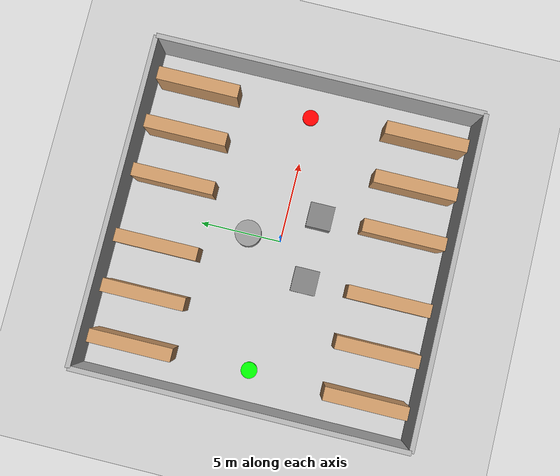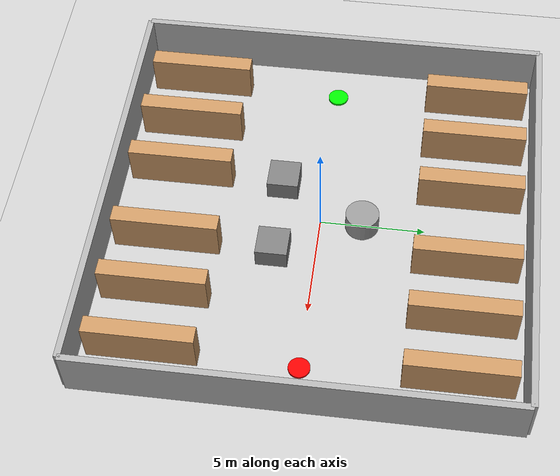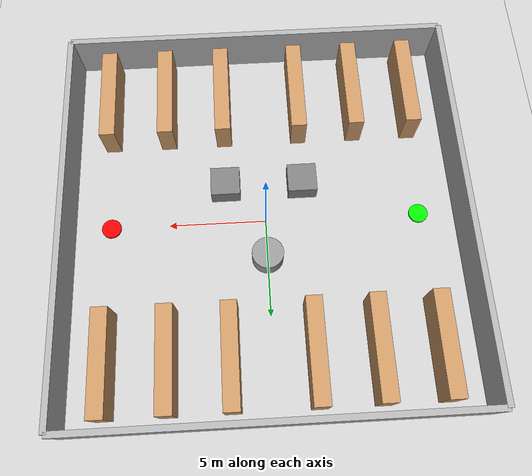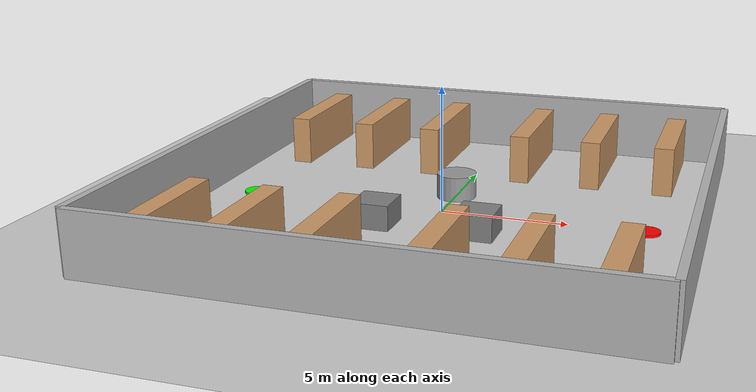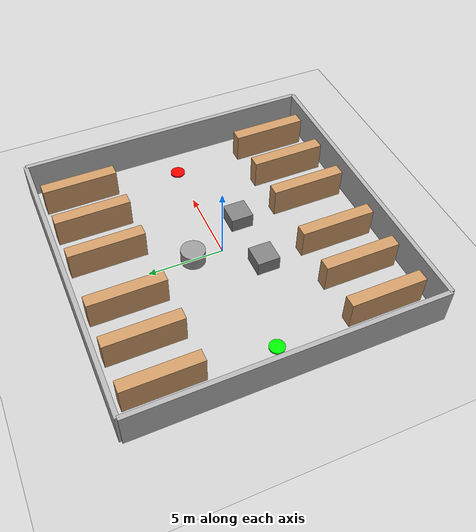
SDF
<?xml version="1.0"?>
<sdf version='1.6'>
  <world name='test_world'>
    <!-- Lighting -->
    <light name='sun' type='directional'>
      <cast_shadows>1</cast_shadows>
      <pose>0 0 15 0 0 0</pose>
      <diffuse>0.9 0.9 0.9 1</diffuse>
      <specular>0.2 0.2 0.2 1</specular>
      <attenuation>
        <range>1000</range>
        <constant>0.9</constant>
        <linear>0.01</linear>
        <quadratic>0.001</quadratic>
      </attenuation>
      <direction>0.5 0.5 -1</direction>
    </light>

    <!-- Ground Plane -->
    <model name='ground_plane'>
      <static>1</static>
      <link name='link'>
        <collision name='collision'>
          <geometry>
            <plane>
              <normal>0 0 1</normal>
              <size>25 25</size>
            </plane>
          </geometry>
          <surface>
            <friction>
              <ode>
                <mu>100</mu>
                <mu2>50</mu2>
              </ode>
            </friction>
          </surface>
        </collision>
        <visual name='visual'>
          <cast_shadows>0</cast_shadows>
          <geometry>
            <plane>
              <normal>0 0 1</normal>
              <size>25 25</size>
            </plane>
          </geometry>
          <material>
            <script>
              <uri>file://media/materials/scripts/gazebo.material</uri>
              <name>Gazebo/Grey</name>
            </script>
          </material>
        </visual>
      </link>
    </model>

    <!-- Outer Walls (20m x 20m warehouse) -->
    <model name='outer_walls'>
      <static>1</static>
      <link name='north_wall'>
        <pose>0 10 1.25 0 0 0</pose>
        <collision name='collision'>
          <geometry>
            <box>
              <size>20 0.3 2.5</size>
            </box>
          </geometry>
        </collision>
        <visual name='visual'>
          <geometry>
            <box>
              <size>20 0.3 2.5</size>
            </box>
          </geometry>
          <material>
            <ambient>0.7 0.7 0.7 1</ambient>
            <diffuse>0.7 0.7 0.7 1</diffuse>
          </material>
        </visual>
      </link>
      <link name='south_wall'>
        <pose>0 -10 1.25 0 0 0</pose>
        <collision name='collision'>
          <geometry>
            <box>
              <size>20 0.3 2.5</size>
            </box>
          </geometry>
        </collision>
        <visual name='visual'>
          <geometry>
            <box>
              <size>20 0.3 2.5</size>
            </box>
          </geometry>
          <material>
            <ambient>0.7 0.7 0.7 1</ambient>
            <diffuse>0.7 0.7 0.7 1</diffuse>
          </material>
        </visual>
      </link>
      <link name='east_wall'>
        <pose>10 0 1.25 0 0 0</pose>
        <collision name='collision'>
          <geometry>
            <box>
              <size>0.3 20 2.5</size>
            </box>
          </geometry>
        </collision>
        <visual name='visual'>
          <geometry>
            <box>
              <size>0.3 20 2.5</size>
            </box>
          </geometry>
          <material>
            <ambient>0.7 0.7 0.7 1</ambient>
            <diffuse>0.7 0.7 0.7 1</diffuse>
          </material>
        </visual>
      </link>
      <link name='west_wall'>
        <pose>-10 0 1.25 0 0 0</pose>
        <collision name='collision'>
          <geometry>
            <box>
              <size>0.3 20 2.5</size>
            </box>
          </geometry>
        </collision>
        <visual name='visual'>
          <geometry>
            <box>
              <size>0.3 20 2.5</size>
            </box>
          </geometry>
          <material>
            <ambient>0.7 0.7 0.7 1</ambient>
            <diffuse>0.7 0.7 0.7 1</diffuse>
          </material>
        </visual>
      </link>
    </model>

    <!-- Shelving Units - Row 1 (North Side, Left) - 垂直排列，大尺寸 -->
    <model name='shelf_1_1'>
      <static>1</static>
      <pose>-8 7 1.0 0 0 0</pose>
      <link name='link'>
        <collision name='collision'>
          <geometry>
            <box>
              <size>0.8 5 2.0</size>
            </box>
          </geometry>
        </collision>
        <visual name='visual'>
          <geometry>
            <box>
              <size>0.8 5 2.0</size>
            </box>
          </geometry>
          <material>
            <ambient>0.8 0.6 0.4 1</ambient>
            <diffuse>0.8 0.6 0.4 1</diffuse>
          </material>
        </visual>
      </link>
    </model>

    <model name='shelf_1_2'>
      <static>1</static>
      <pose>-5 7 1.0 0 0 0</pose>
      <link name='link'>
        <collision name='collision'>
          <geometry>
            <box>
              <size>0.8 5 2.0</size>
            </box>
          </geometry>
        </collision>
        <visual name='visual'>
          <geometry>
            <box>
              <size>0.8 5 2.0</size>
            </box>
          </geometry>
          <material>
            <ambient>0.8 0.6 0.4 1</ambient>
            <diffuse>0.8 0.6 0.4 1</diffuse>
          </material>
        </visual>
      </link>
    </model>

    <model name='shelf_1_3'>
      <static>1</static>
      <pose>-2 7 1.0 0 0 0</pose>
      <link name='link'>
        <collision name='collision'>
          <geometry>
            <box>
              <size>0.8 5 2.0</size>
            </box>
          </geometry>
        </collision>
        <visual name='visual'>
          <geometry>
            <box>
              <size>0.8 5 2.0</size>
            </box>
          </geometry>
          <material>
            <ambient>0.8 0.6 0.4 1</ambient>
            <diffuse>0.8 0.6 0.4 1</diffuse>
          </material>
        </visual>
      </link>
    </model>

    <!-- Row 2 (South Side, Left) - 垂直排列，大尺寸 -->
    <model name='shelf_2_1'>
      <static>1</static>
      <pose>-8 -7 1.0 0 0 0</pose>
      <link name='link'>
        <collision name='collision'>
          <geometry>
            <box>
              <size>0.8 5 2.0</size>
            </box>
          </geometry>
        </collision>
        <visual name='visual'>
          <geometry>
            <box>
              <size>0.8 5 2.0</size>
            </box>
          </geometry>
          <material>
            <ambient>0.8 0.6 0.4 1</ambient>
            <diffuse>0.8 0.6 0.4 1</diffuse>
          </material>
        </visual>
      </link>
    </model>

    <model name='shelf_2_2'>
      <static>1</static>
      <pose>-5 -7 1.0 0 0 0</pose>
      <link name='link'>
        <collision name='collision'>
          <geometry>
            <box>
              <size>0.8 5 2.0</size>
            </box>
          </geometry>
        </collision>
        <visual name='visual'>
          <geometry>
            <box>
              <size>0.8 5 2.0</size>
            </box>
          </geometry>
          <material>
            <ambient>0.8 0.6 0.4 1</ambient>
            <diffuse>0.8 0.6 0.4 1</diffuse>
          </material>
        </visual>
      </link>
    </model>

    <model name='shelf_2_3'>
      <static>1</static>
      <pose>-2 -7 1.0 0 0 0</pose>
      <link name='link'>
        <collision name='collision'>
          <geometry>
            <box>
              <size>0.8 5 2.0</size>
            </box>
          </geometry>
        </collision>
        <visual name='visual'>
          <geometry>
            <box>
              <size>0.8 5 2.0</size>
            </box>
          </geometry>
          <material>
            <ambient>0.8 0.6 0.4 1</ambient>
            <diffuse>0.8 0.6 0.4 1</diffuse>
          </material>
        </visual>
      </link>
    </model>

    <!-- Row 3 (East Side) - 垂直排列，大尺寸 -->
    <model name='shelf_3_1'>
      <static>1</static>
      <pose>8 7 1.0 0 0 0</pose>
      <link name='link'>
        <collision name='collision'>
          <geometry>
            <box>
              <size>0.8 5 2.0</size>
            </box>
          </geometry>
        </collision>
        <visual name='visual'>
          <geometry>
            <box>
              <size>0.8 5 2.0</size>
            </box>
          </geometry>
          <material>
            <ambient>0.8 0.6 0.4 1</ambient>
            <diffuse>0.8 0.6 0.4 1</diffuse>
          </material>
        </visual>
      </link>
    </model>

    <model name='shelf_3_2'>
      <static>1</static>
      <pose>5 7 1.0 0 0 0</pose>
      <link name='link'>
        <collision name='collision'>
          <geometry>
            <box>
              <size>0.8 5 2.0</size>
            </box>
          </geometry>
        </collision>
        <visual name='visual'>
          <geometry>
            <box>
              <size>0.8 5 2.0</size>
            </box>
          </geometry>
          <material>
            <ambient>0.8 0.6 0.4 1</ambient>
            <diffuse>0.8 0.6 0.4 1</diffuse>
          </material>
        </visual>
      </link>
    </model>

    <model name='shelf_3_3'>
      <static>1</static>
      <pose>2 7 1.0 0 0 0</pose>
      <link name='link'>
        <collision name='collision'>
          <geometry>
            <box>
              <size>0.8 5 2.0</size>
            </box>
          </geometry>
        </collision>
        <visual name='visual'>
          <geometry>
            <box>
              <size>0.8 5 2.0</size>
            </box>
          </geometry>
          <material>
            <ambient>0.8 0.6 0.4 1</ambient>
            <diffuse>0.8 0.6 0.4 1</diffuse>
          </material>
        </visual>
      </link>
    </model>

    <model name='shelf_3_4'>
      <static>1</static>
      <pose>8 -7 1.0 0 0 0</pose>
      <link name='link'>
        <collision name='collision'>
          <geometry>
            <box>
              <size>0.8 5 2.0</size>
            </box>
          </geometry>
        </collision>
        <visual name='visual'>
          <geometry>
            <box>
              <size>0.8 5 2.0</size>
            </box>
          </geometry>
          <material>
            <ambient>0.8 0.6 0.4 1</ambient>
            <diffuse>0.8 0.6 0.4 1</diffuse>
          </material>
        </visual>
      </link>
    </model>

    <model name='shelf_3_5'>
      <static>1</static>
      <pose>5 -7 1.0 0 0 0</pose>
      <link name='link'>
        <collision name='collision'>
          <geometry>
            <box>
              <size>0.8 5 2.0</size>
            </box>
          </geometry>
        </collision>
        <visual name='visual'>
          <geometry>
            <box>
              <size>0.8 5 2.0</size>
            </box>
          </geometry>
          <material>
            <ambient>0.8 0.6 0.4 1</ambient>
            <diffuse>0.8 0.6 0.4 1</diffuse>
          </material>
        </visual>
      </link>
    </model>

    <model name='shelf_3_6'>
      <static>1</static>
      <pose>2 -7 1.0 0 0 0</pose>
      <link name='link'>
        <collision name='collision'>
          <geometry>
            <box>
              <size>0.8 5 2.0</size>
            </box>
          </geometry>
        </collision>
        <visual name='visual'>
          <geometry>
            <box>
              <size>0.8 5 2.0</size>
            </box>
          </geometry>
          <material>
            <ambient>0.8 0.6 0.4 1</ambient>
            <diffuse>0.8 0.6 0.4 1</diffuse>
          </material>
        </visual>
      </link>
    </model>

    <!-- Central Obstacles - 初始位置，会被random_obstacles脚本移动 -->
    <model name='central_obstacle_1'>
      <static>0</static>
      <pose>0 2 0.5 0 0 0</pose>
      <link name='link'>
        <collision name='collision'>
          <geometry>
            <cylinder>
              <radius>0.8</radius>
              <length>1</length>
            </cylinder>
          </geometry>
        </collision>
        <visual name='visual'>
          <geometry>
            <cylinder>
              <radius>0.8</radius>
              <length>1</length>
            </cylinder>
          </geometry>
          <material>
            <ambient>0.6 0.6 0.6 1</ambient>
            <diffuse>0.6 0.6 0.6 1</diffuse>
          </material>
        </visual>
      </link>
    </model>

    <model name='central_obstacle_2'>
      <static>0</static>  <!-- 改为可移动模型，支持动态随机分布 -->
      <pose>-2 -2 0.5 0 0 0</pose>
      <link name='link'>
        <collision name='collision'>
          <geometry>
            <box>
              <size>1.5 1.5 1</size>
            </box>
          </geometry>
        </collision>
        <visual name='visual'>
          <geometry>
            <box>
              <size>1.5 1.5 1</size>
            </box>
          </geometry>
          <material>
            <ambient>0.5 0.5 0.5 1</ambient>
            <diffuse>0.5 0.5 0.5 1</diffuse>
          </material>
        </visual>
      </link>
    </model>

    <model name='central_obstacle_3'>
      <static>0</static>  <!-- 改为可移动模型，支持动态随机分布 -->
      <pose>2 -2 0.5 0 0 0</pose>
      <link name='link'>
        <collision name='collision'>
          <geometry>
            <box>
              <size>1.5 1.5 1</size>
            </box>
          </geometry>
        </collision>
        <visual name='visual'>
          <geometry>
            <box>
              <size>1.5 1.5 1</size>
            </box>
          </geometry>
          <material>
            <ambient>0.5 0.5 0.5 1</ambient>
            <diffuse>0.5 0.5 0.5 1</diffuse>
          </material>
        </visual>
      </link>
    </model>

    <!-- Station S1: Loading Area (West) -->
    <model name='station_s1'>
      <static>1</static>
      <pose>-8 0 0.05 0 0 0</pose>
      <link name='link'>
        <!-- Collision disabled to allow robot to reach the station -->
        <visual name='visual'>
          <geometry>
            <cylinder>
              <radius>0.5</radius>
              <length>0.1</length>
            </cylinder>
          </geometry>
          <material>
            <ambient>0 1 0 1</ambient>
            <diffuse>0 1 0 1</diffuse>
          </material>
        </visual>
      </link>
    </model>

    <!-- Station S2: Unloading Area (East) -->
    <model name='station_s2'>
      <static>1</static>
      <pose>8 0 0.05 0 0 0</pose>
      <link name='link'>
        <!-- Collision disabled to allow robot to reach the station -->
        <visual name='visual'>
          <geometry>
            <cylinder>
              <radius>0.5</radius>
              <length>0.1</length>
            </cylinder>
          </geometry>
          <material>
            <ambient>1 0 0 1</ambient>
            <diffuse>1 0 0 1</diffuse>
          </material>
        </visual>
      </link>
    </model>

    <!-- Physics Settings -->
    <gravity>0 0 -9.8</gravity>
    <magnetic_field>6e-06 2.3e-05 -4.2e-05</magnetic_field>
    <atmosphere type='adiabatic'/>
    <physics name='default_physics' default='0' type='ode'>
      <max_step_size>0.001</max_step_size>
      <real_time_factor>1</real_time_factor>
      <real_time_update_rate>1000</real_time_update_rate>
    </physics>
    <scene>
      <ambient>0.4 0.4 0.4 1</ambient>
      <background>0.7 0.7 0.7 1</background>
      <shadows>1</shadows>
    </scene>
    <!-- GUI Camera Settings: Top-down view from (0,0) looking down -->
    <gui fullscreen='0'>
      <camera name='user_camera'>
        <pose>0 0 20 0 1.57079632679 0</pose>
        <view_controller>orbit</view_controller>
      </camera>
    </gui>
    <spherical_coordinates>
      <surface_model>EARTH_WGS84</surface_model>
      <latitude_deg>0</latitude_deg>
      <longitude_deg>0</longitude_deg>
      <elevation>0</elevation>
      <heading_deg>0</heading_deg>
    </spherical_coordinates>

  </world>
</sdf>
